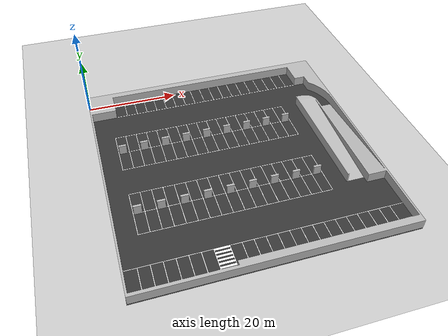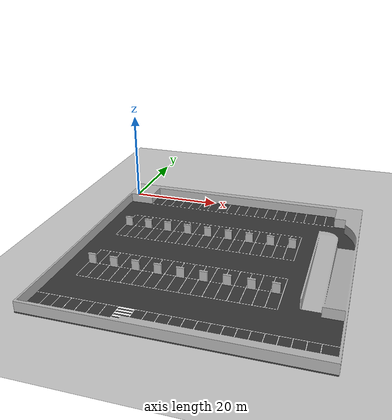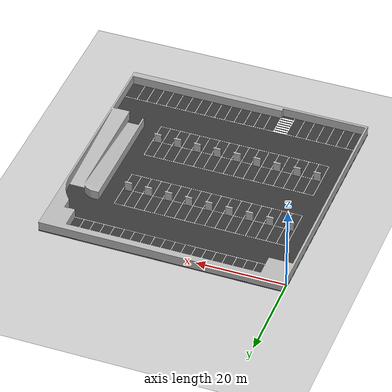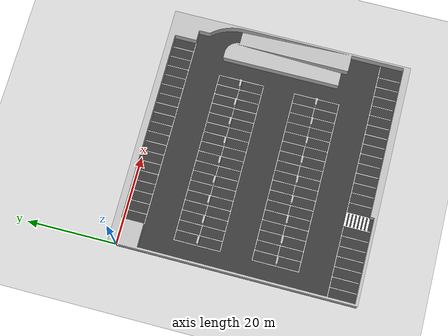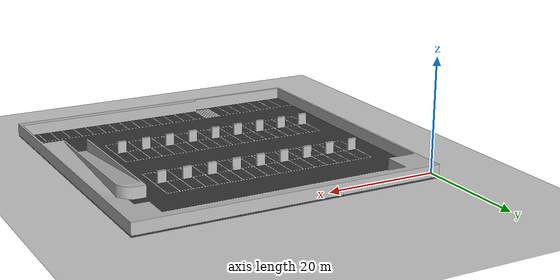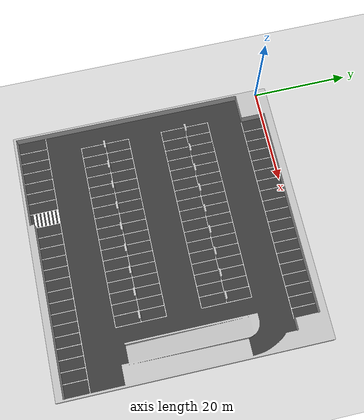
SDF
<?xml version="1.0"?>
<sdf version="1.5">
  <world name="Fasanengarten_Parking_Garage_1UG">
    <!-- Environment -->
    <scene>
      <grid>true</grid>
      <origin_visual>false</origin_visual>
      <ambient>0.592 0.624 0.635 1.0</ambient>
      <background>0.0 0.74901 1.0 1.0</background>
      <shadows>1</shadows>
    </scene>

    <physics name='default_physics' default='0' type='ode'>
      <max_step_size>0.01</max_step_size>
      <real_time_factor>1</real_time_factor>
      <real_time_update_rate>100</real_time_update_rate>
    </physics>

    <!-- GUI Configuration-->
    <gui>
      <plugin name='SceneGraphPlugin' filename='libGUISceneGraphPlugin.so'/>
      <camera name='user_camera'>
        <pose frame=''>-36 -11 111.0 0.0 1.57 1.57</pose>
        <view_controller>orbit</view_controller>
        <projection_type>perspective</projection_type>
      </camera>

      <!--starting position of the gui camera-->
      <camera name="gzclient_camera">
        <pose> 20 -10 35.0 0.0 1.54 0 </pose>
      </camera>

    </gui>

    <!-- A ground plane, where elements can be moved onto. -->
    <include>
      <uri>model://ground</uri>
      <name>ground_plane</name>
      <pose>0 0 -0.2 0.0 0.0 0.0</pose>
    </include>

    <!-- global light source -->
    <include>
      <uri>model://sun</uri>
    </include>

    <!-- Point Light -->

    <!-- Point Light -->

    <!-- Include the Parking Garage as a model reference. -->
    <include>
      <uri>model://Fasanengarten_Parking_Garage</uri>
      <name>Fasanengarten_Parking_Garage</name>
      <pose>-0.205294 1.856615 0.0 0.0 0.0 -1.572441</pose>
    </include>

  </world>
</sdf>

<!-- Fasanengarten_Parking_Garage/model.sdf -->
<sdf version='1.5'>
  <model name="Fasanengarten_Parking_Garage">
    <static>true</static>
    <link name="body">
      <pose>0.0 0.0 0.0  0.0 0.0 0.0</pose>
      <collision name="body_collision">
        <geometry>
          <mesh><scale>1.0 1.0 1.0</scale><uri>model://Fasanengarten_Parking_Garage/meshes/tg_fasanengarten_7_1.dae</uri></mesh>
        </geometry>
      </collision>
      <visual name="visual_collision">
        <geometry>
          <mesh><scale>1.0 1.0 1.0</scale><uri>model://Fasanengarten_Parking_Garage/meshes/tg_fasanengarten_7_1.dae</uri></mesh>
        </geometry>
      </visual>
    </link>

  </model>
</sdf>
